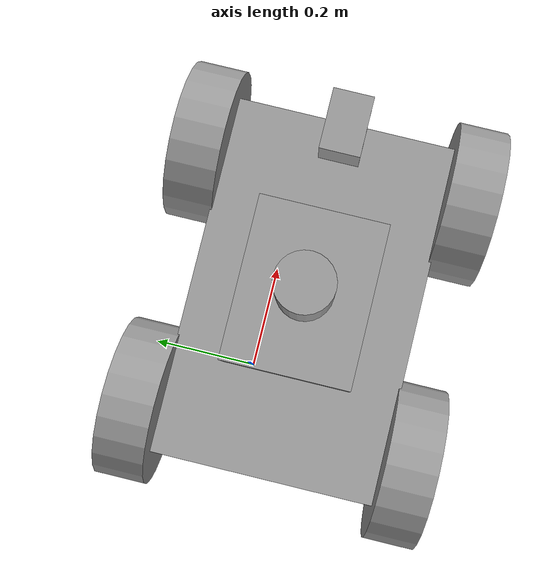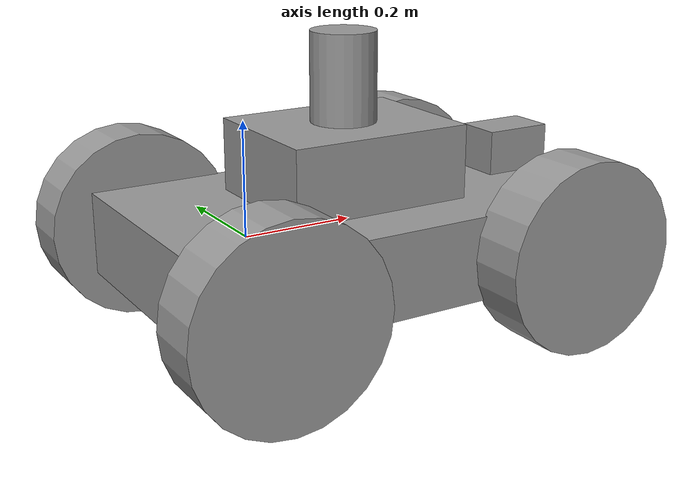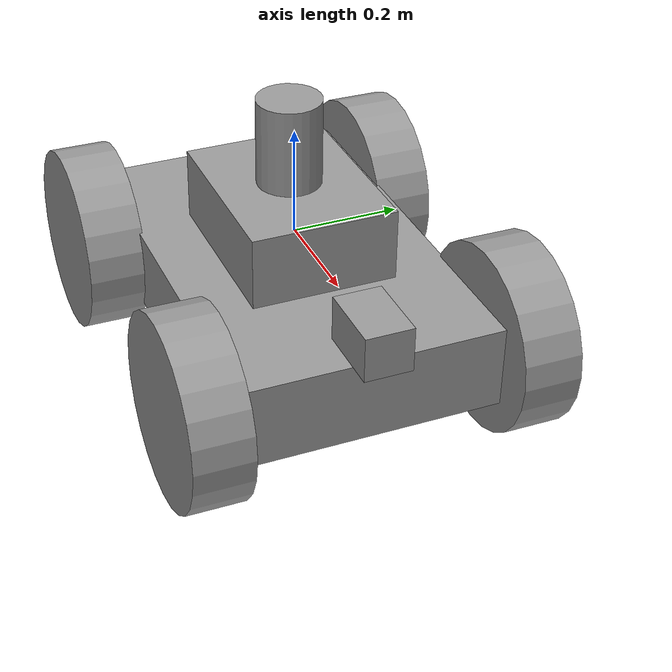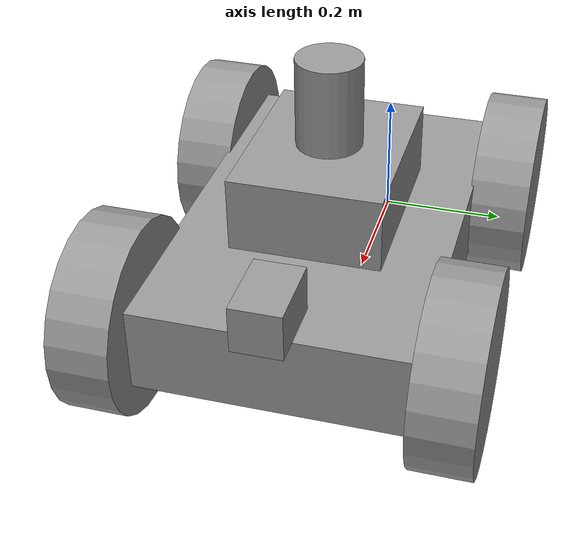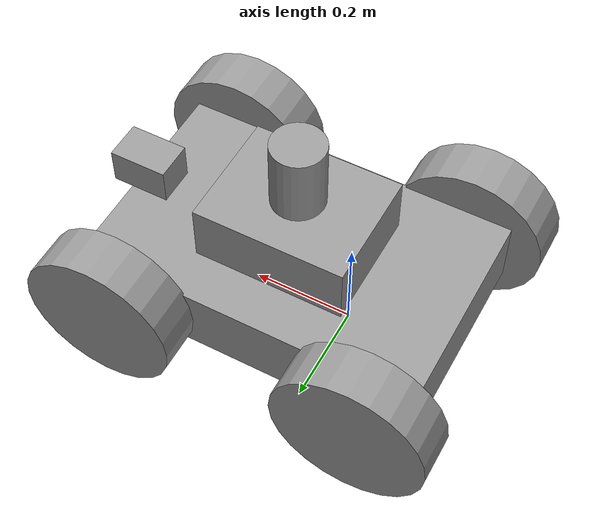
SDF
<?xml version='1.0'?>
<sdf version='1.7'>
  <model name='Untitled'>
    <link name='link_0'>
      <inertial>
        <mass>0.0457204</mass>
        <inertia>
          <ixx>0.000844708</ixx>
          <ixy>0</ixy>
          <ixz>0</ixz>
          <iyy>0.00204553</iyy>
          <iyz>0</iyz>
          <izz>0.0027376</izz>
        </inertia>
        <pose>0 0 0 0 -0 0</pose>
      </inertial>
      <pose>0.149036 -0.069508 0.000198 0 -0 0</pose>
      <visual name='visual'>
        <pose>0 0 0 0 -0 0</pose>
        <geometry>
          <box>
            <size>0.718922 0.449083 0.14153</size>
          </box>
        </geometry>
        <material>
          <lighting>1</lighting>
          <script>
            <uri>file://media/materials/scripts/gazebo.material</uri>
            <name>Gazebo/Grey</name>
          </script>
          <shader type='pixel'/>
          <emissive>0 0 0 1</emissive>
        </material>
        <transparency>0</transparency>
        <cast_shadows>1</cast_shadows>
      </visual>
      <collision name='collision'>
        <laser_retro>0</laser_retro>
        <max_contacts>10</max_contacts>
        <pose>0 0 0 0 -0 0</pose>
        <geometry>
          <box>
            <size>0.718922 0.449083 0.14153</size>
          </box>
        </geometry>
        <surface>
          <friction>
            <ode>
              <mu>1</mu>
              <mu2>1</mu2>
              <fdir1>0 0 0</fdir1>
              <slip1>0</slip1>
              <slip2>0</slip2>
            </ode>
            <torsional>
              <coefficient>1</coefficient>
              <patch_radius>0</patch_radius>
              <surface_radius>0</surface_radius>
              <use_patch_radius>1</use_patch_radius>
              <ode>
                <slip>0</slip>
              </ode>
            </torsional>
          </friction>
          <bounce>
            <restitution_coefficient>0</restitution_coefficient>
            <threshold>1e+06</threshold>
          </bounce>
          <contact>
            <collide_without_contact>0</collide_without_contact>
            <collide_without_contact_bitmask>1</collide_without_contact_bitmask>
            <collide_bitmask>1</collide_bitmask>
            <ode>
              <soft_cfm>0</soft_cfm>
              <soft_erp>0.2</soft_erp>
              <kp>1e+13</kp>
              <kd>1</kd>
              <max_vel>0.01</max_vel>
              <min_depth>0</min_depth>
            </ode>
            <bullet>
              <split_impulse>1</split_impulse>
              <split_impulse_penetration_threshold>-0.01</split_impulse_penetration_threshold>
              <soft_cfm>0</soft_cfm>
              <soft_erp>0.2</soft_erp>
              <kp>1e+13</kp>
              <kd>1</kd>
            </bullet>
          </contact>
        </surface>
      </collision>
    </link>
    <link name='link_1'>
      <inertial>
        <mass>0.0102506</mass>
        <inertia>
          <ixx>7.42392e-05</ixx>
          <ixy>0</ixy>
          <ixz>0</ixz>
          <iyy>7.42392e-05</iyy>
          <iyz>0</iyz>
          <izz>0.000131526</izz>
        </inertia>
        <pose>0 0 0 0 -0 0</pose>
      </inertial>
      <pose>-0.120964 -0.339508 0.000198 1.56446 -0 0</pose>
      <visual name='visual'>
        <pose>0 0 0 0 -0 0</pose>
        <geometry>
          <cylinder>
            <radius>0.160194</radius>
            <length>0.0996144</length>
          </cylinder>
        </geometry>
        <material>
          <lighting>1</lighting>
          <script>
            <uri>file://media/materials/scripts/gazebo.material</uri>
            <name>Gazebo/Grey</name>
          </script>
          <shader type='pixel'/>
          <emissive>0 0 0 1</emissive>
        </material>
        <transparency>0</transparency>
        <cast_shadows>1</cast_shadows>
      </visual>
      <collision name='collision'>
        <laser_retro>0</laser_retro>
        <max_contacts>10</max_contacts>
        <pose>0 0 0 0 -0 0</pose>
        <geometry>
          <cylinder>
            <radius>0.160194</radius>
            <length>0.099614</length>
          </cylinder>
        </geometry>
        <surface>
          <friction>
            <ode>
              <mu>1</mu>
              <mu2>1</mu2>
              <fdir1>0 0 0</fdir1>
              <slip1>0</slip1>
              <slip2>0</slip2>
            </ode>
            <torsional>
              <coefficient>1</coefficient>
              <patch_radius>0</patch_radius>
              <surface_radius>0</surface_radius>
              <use_patch_radius>1</use_patch_radius>
              <ode>
                <slip>0</slip>
              </ode>
            </torsional>
          </friction>
          <bounce>
            <restitution_coefficient>0</restitution_coefficient>
            <threshold>1e+06</threshold>
          </bounce>
          <contact>
            <collide_without_contact>0</collide_without_contact>
            <collide_without_contact_bitmask>1</collide_without_contact_bitmask>
            <collide_bitmask>1</collide_bitmask>
            <ode>
              <soft_cfm>0</soft_cfm>
              <soft_erp>0.2</soft_erp>
              <kp>1e+13</kp>
              <kd>1</kd>
              <max_vel>0.01</max_vel>
              <min_depth>0</min_depth>
            </ode>
            <bullet>
              <split_impulse>1</split_impulse>
              <split_impulse_penetration_threshold>-0.01</split_impulse_penetration_threshold>
              <soft_cfm>0</soft_cfm>
              <soft_erp>0.2</soft_erp>
              <kp>1e+13</kp>
              <kd>1</kd>
            </bullet>
          </contact>
        </surface>
      </collision>
    </link>
    <link name='link_1_clone'>
      <inertial>
        <mass>0.0102506</mass>
        <inertia>
          <ixx>7.42392e-05</ixx>
          <ixy>0</ixy>
          <ixz>0</ixz>
          <iyy>7.42392e-05</iyy>
          <iyz>0</iyz>
          <izz>0.000131526</izz>
        </inertia>
        <pose>0 0 0 0 -0 0</pose>
      </inertial>
      <pose>-0.120964 0.200492 0.000198 1.56446 -0 0</pose>
      <visual name='visual'>
        <pose>0 0 0 0 -0 0</pose>
        <geometry>
          <cylinder>
            <radius>0.160194</radius>
            <length>0.0996144</length>
          </cylinder>
        </geometry>
        <material>
          <lighting>1</lighting>
          <script>
            <uri>file://media/materials/scripts/gazebo.material</uri>
            <name>Gazebo/Grey</name>
          </script>
          <shader type='pixel'/>
          <emissive>0 0 0 1</emissive>
        </material>
        <transparency>0</transparency>
        <cast_shadows>1</cast_shadows>
      </visual>
      <collision name='collision'>
        <laser_retro>0</laser_retro>
        <max_contacts>10</max_contacts>
        <pose>0 0 0 0 -0 0</pose>
        <geometry>
          <cylinder>
            <radius>0.160194</radius>
            <length>0.099614</length>
          </cylinder>
        </geometry>
        <surface>
          <friction>
            <ode>
              <mu>1</mu>
              <mu2>1</mu2>
              <fdir1>0 0 0</fdir1>
              <slip1>0</slip1>
              <slip2>0</slip2>
            </ode>
            <torsional>
              <coefficient>1</coefficient>
              <patch_radius>0</patch_radius>
              <surface_radius>0</surface_radius>
              <use_patch_radius>1</use_patch_radius>
              <ode>
                <slip>0</slip>
              </ode>
            </torsional>
          </friction>
          <bounce>
            <restitution_coefficient>0</restitution_coefficient>
            <threshold>1e+06</threshold>
          </bounce>
          <contact>
            <collide_without_contact>0</collide_without_contact>
            <collide_without_contact_bitmask>1</collide_without_contact_bitmask>
            <collide_bitmask>1</collide_bitmask>
            <ode>
              <soft_cfm>0</soft_cfm>
              <soft_erp>0.2</soft_erp>
              <kp>1e+13</kp>
              <kd>1</kd>
              <max_vel>0.01</max_vel>
              <min_depth>0</min_depth>
            </ode>
            <bullet>
              <split_impulse>1</split_impulse>
              <split_impulse_penetration_threshold>-0.01</split_impulse_penetration_threshold>
              <soft_cfm>0</soft_cfm>
              <soft_erp>0.2</soft_erp>
              <kp>1e+13</kp>
              <kd>1</kd>
            </bullet>
          </contact>
        </surface>
      </collision>
    </link>
    <link name='link_1_clone_0'>
      <inertial>
        <mass>0.0102506</mass>
        <inertia>
          <ixx>7.42392e-05</ixx>
          <ixy>0</ixy>
          <ixz>0</ixz>
          <iyy>7.42392e-05</iyy>
          <iyz>0</iyz>
          <izz>0.000131526</izz>
        </inertia>
        <pose>0 0 0 0 -0 0</pose>
      </inertial>
      <pose>0.419037 0.200492 0.000198 1.56446 -0 0</pose>
      <visual name='visual'>
        <pose>0 0 0 0 -0 0</pose>
        <geometry>
          <cylinder>
            <radius>0.160194</radius>
            <length>0.0996144</length>
          </cylinder>
        </geometry>
        <material>
          <lighting>1</lighting>
          <script>
            <uri>file://media/materials/scripts/gazebo.material</uri>
            <name>Gazebo/Grey</name>
          </script>
          <shader type='pixel'/>
          <emissive>0 0 0 1</emissive>
        </material>
        <transparency>0</transparency>
        <cast_shadows>1</cast_shadows>
      </visual>
      <collision name='collision'>
        <laser_retro>0</laser_retro>
        <max_contacts>10</max_contacts>
        <pose>0 0 0 0 -0 0</pose>
        <geometry>
          <cylinder>
            <radius>0.160194</radius>
            <length>0.099614</length>
          </cylinder>
        </geometry>
        <surface>
          <friction>
            <ode>
              <mu>1</mu>
              <mu2>1</mu2>
              <fdir1>0 0 0</fdir1>
              <slip1>0</slip1>
              <slip2>0</slip2>
            </ode>
            <torsional>
              <coefficient>1</coefficient>
              <patch_radius>0</patch_radius>
              <surface_radius>0</surface_radius>
              <use_patch_radius>1</use_patch_radius>
              <ode>
                <slip>0</slip>
              </ode>
            </torsional>
          </friction>
          <bounce>
            <restitution_coefficient>0</restitution_coefficient>
            <threshold>1e+06</threshold>
          </bounce>
          <contact>
            <collide_without_contact>0</collide_without_contact>
            <collide_without_contact_bitmask>1</collide_without_contact_bitmask>
            <collide_bitmask>1</collide_bitmask>
            <ode>
              <soft_cfm>0</soft_cfm>
              <soft_erp>0.2</soft_erp>
              <kp>1e+13</kp>
              <kd>1</kd>
              <max_vel>0.01</max_vel>
              <min_depth>0</min_depth>
            </ode>
            <bullet>
              <split_impulse>1</split_impulse>
              <split_impulse_penetration_threshold>-0.01</split_impulse_penetration_threshold>
              <soft_cfm>0</soft_cfm>
              <soft_erp>0.2</soft_erp>
              <kp>1e+13</kp>
              <kd>1</kd>
            </bullet>
          </contact>
        </surface>
      </collision>
    </link>
    <link name='link_1_clone_1'>
      <inertial>
        <mass>0.0102506</mass>
        <inertia>
          <ixx>7.42392e-05</ixx>
          <ixy>0</ixy>
          <ixz>0</ixz>
          <iyy>7.42392e-05</iyy>
          <iyz>0</iyz>
          <izz>0.000131526</izz>
        </inertia>
        <pose>0 0 0 0 -0 0</pose>
      </inertial>
      <pose>0.419037 -0.339508 0.000198 1.56446 -0 0</pose>
      <visual name='visual'>
        <pose>0 0 0 0 -0 0</pose>
        <geometry>
          <cylinder>
            <radius>0.160194</radius>
            <length>0.0996144</length>
          </cylinder>
        </geometry>
        <material>
          <lighting>1</lighting>
          <script>
            <uri>file://media/materials/scripts/gazebo.material</uri>
            <name>Gazebo/Grey</name>
          </script>
          <shader type='pixel'/>
          <emissive>0 0 0 1</emissive>
        </material>
        <transparency>0</transparency>
        <cast_shadows>1</cast_shadows>
      </visual>
      <collision name='collision'>
        <laser_retro>0</laser_retro>
        <max_contacts>10</max_contacts>
        <pose>0 0 0 0 -0 0</pose>
        <geometry>
          <cylinder>
            <radius>0.160194</radius>
            <length>0.099614</length>
          </cylinder>
        </geometry>
        <surface>
          <friction>
            <ode>
              <mu>1</mu>
              <mu2>1</mu2>
              <fdir1>0 0 0</fdir1>
              <slip1>0</slip1>
              <slip2>0</slip2>
            </ode>
            <torsional>
              <coefficient>1</coefficient>
              <patch_radius>0</patch_radius>
              <surface_radius>0</surface_radius>
              <use_patch_radius>1</use_patch_radius>
              <ode>
                <slip>0</slip>
              </ode>
            </torsional>
          </friction>
          <bounce>
            <restitution_coefficient>0</restitution_coefficient>
            <threshold>1e+06</threshold>
          </bounce>
          <contact>
            <collide_without_contact>0</collide_without_contact>
            <collide_without_contact_bitmask>1</collide_without_contact_bitmask>
            <collide_bitmask>1</collide_bitmask>
            <ode>
              <soft_cfm>0</soft_cfm>
              <soft_erp>0.2</soft_erp>
              <kp>1e+13</kp>
              <kd>1</kd>
              <max_vel>0.01</max_vel>
              <min_depth>0</min_depth>
            </ode>
            <bullet>
              <split_impulse>1</split_impulse>
              <split_impulse_penetration_threshold>-0.01</split_impulse_penetration_threshold>
              <soft_cfm>0</soft_cfm>
              <soft_erp>0.2</soft_erp>
              <kp>1e+13</kp>
              <kd>1</kd>
            </bullet>
          </contact>
        </surface>
      </collision>
    </link>
    <link name='link_2'>
      <inertial>
        <mass>0.000759026</mass>
        <inertia>
          <ixx>7.92077e-07</ixx>
          <ixy>0</ixy>
          <ixz>0</ixz>
          <iyy>1.30926e-06</iyy>
          <iyz>0</iyz>
          <izz>1.35273e-06</izz>
        </inertia>
        <pose>0 0 0 0 -0 0</pose>
      </inertial>
      <pose>0.489036 -0.069508 0.110198 0 -0 0</pose>
      <visual name='visual'>
        <pose>0 0 0 0 -0 0</pose>
        <geometry>
          <box>
            <size>0.121579 0.081271 0.076926</size>
          </box>
        </geometry>
        <material>
          <lighting>1</lighting>
          <script>
            <uri>file://media/materials/scripts/gazebo.material</uri>
            <name>Gazebo/Grey</name>
          </script>
          <shader type='pixel'/>
          <emissive>0 0 0 1</emissive>
        </material>
        <transparency>0</transparency>
        <cast_shadows>1</cast_shadows>
      </visual>
      <collision name='collision'>
        <laser_retro>0</laser_retro>
        <max_contacts>10</max_contacts>
        <pose>0 0 0 0 -0 0</pose>
        <geometry>
          <box>
            <size>0.121579 0.081271 0.076926</size>
          </box>
        </geometry>
        <surface>
          <friction>
            <ode>
              <mu>1</mu>
              <mu2>1</mu2>
              <fdir1>0 0 0</fdir1>
              <slip1>0</slip1>
              <slip2>0</slip2>
            </ode>
            <torsional>
              <coefficient>1</coefficient>
              <patch_radius>0</patch_radius>
              <surface_radius>0</surface_radius>
              <use_patch_radius>1</use_patch_radius>
              <ode>
                <slip>0</slip>
              </ode>
            </torsional>
          </friction>
          <bounce>
            <restitution_coefficient>0</restitution_coefficient>
            <threshold>1e+06</threshold>
          </bounce>
          <contact>
            <collide_without_contact>0</collide_without_contact>
            <collide_without_contact_bitmask>1</collide_without_contact_bitmask>
            <collide_bitmask>1</collide_bitmask>
            <ode>
              <soft_cfm>0</soft_cfm>
              <soft_erp>0.2</soft_erp>
              <kp>1e+13</kp>
              <kd>1</kd>
              <max_vel>0.01</max_vel>
              <min_depth>0</min_depth>
            </ode>
            <bullet>
              <split_impulse>1</split_impulse>
              <split_impulse_penetration_threshold>-0.01</split_impulse_penetration_threshold>
              <soft_cfm>0</soft_cfm>
              <soft_erp>0.2</soft_erp>
              <kp>1e+13</kp>
              <kd>1</kd>
            </bullet>
          </contact>
        </surface>
      </collision>
    </link>
    <link name='link_3'>
      <inertial>
        <mass>0.0117834</mass>
        <inertia>
          <ixx>8.28877e-05</ixx>
          <ixy>0</ixy>
          <ixz>0</ixz>
          <iyy>0.000120043</iyy>
          <iyz>0</iyz>
          <izz>0.000158754</izz>
        </inertia>
        <pose>0 0 0 0 -0 0</pose>
      </inertial>
      <pose>0.149036 -0.069508 0.120198 0 -0 0</pose>
      <visual name='visual'>
        <pose>0 0 0 0 -0 0</pose>
        <geometry>
          <box>
            <size>0.31584 0.248831 0.149981</size>
          </box>
        </geometry>
        <material>
          <lighting>1</lighting>
          <script>
            <uri>file://media/materials/scripts/gazebo.material</uri>
            <name>Gazebo/Grey</name>
          </script>
          <shader type='pixel'/>
          <emissive>0 0 0 1</emissive>
        </material>
        <transparency>0</transparency>
        <cast_shadows>1</cast_shadows>
      </visual>
      <collision name='collision'>
        <laser_retro>0</laser_retro>
        <max_contacts>10</max_contacts>
        <pose>0 0 0 0 -0 0</pose>
        <geometry>
          <box>
            <size>0.31584 0.248831 0.149981</size>
          </box>
        </geometry>
        <surface>
          <friction>
            <ode>
              <mu>1</mu>
              <mu2>1</mu2>
              <fdir1>0 0 0</fdir1>
              <slip1>0</slip1>
              <slip2>0</slip2>
            </ode>
            <torsional>
              <coefficient>1</coefficient>
              <patch_radius>0</patch_radius>
              <surface_radius>0</surface_radius>
              <use_patch_radius>1</use_patch_radius>
              <ode>
                <slip>0</slip>
              </ode>
            </torsional>
          </friction>
          <bounce>
            <restitution_coefficient>0</restitution_coefficient>
            <threshold>1e+06</threshold>
          </bounce>
          <contact>
            <collide_without_contact>0</collide_without_contact>
            <collide_without_contact_bitmask>1</collide_without_contact_bitmask>
            <collide_bitmask>1</collide_bitmask>
            <ode>
              <soft_cfm>0</soft_cfm>
              <soft_erp>0.2</soft_erp>
              <kp>1e+13</kp>
              <kd>1</kd>
              <max_vel>0.01</max_vel>
              <min_depth>0</min_depth>
            </ode>
            <bullet>
              <split_impulse>1</split_impulse>
              <split_impulse_penetration_threshold>-0.01</split_impulse_penetration_threshold>
              <soft_cfm>0</soft_cfm>
              <soft_erp>0.2</soft_erp>
              <kp>1e+13</kp>
              <kd>1</kd>
            </bullet>
          </contact>
        </surface>
      </collision>
    </link>
    <link name='link_4'>
      <inertial>
        <mass>0.0018121</mass>
        <inertia>
          <ixx>4.75108e-06</ixx>
          <ixy>0</ixy>
          <ixz>0</ixz>
          <iyy>4.75108e-06</iyy>
          <iyz>0</iyz>
          <izz>2.74685e-06</izz>
        </inertia>
        <pose>0 0 0 0 -0 0</pose>
      </inertial>
      <pose>0.149036 -0.069508 0.270198 0 -0 0</pose>
      <visual name='visual'>
        <pose>0 0 0 0 -0 0</pose>
        <geometry>
          <cylinder>
            <radius>0.0550607</radius>
            <length>0.149557</length>
          </cylinder>
        </geometry>
        <material>
          <lighting>1</lighting>
          <script>
            <uri>file://media/materials/scripts/gazebo.material</uri>
            <name>Gazebo/Grey</name>
          </script>
          <shader type='pixel'/>
          <emissive>0 0 0 1</emissive>
        </material>
        <transparency>0</transparency>
        <cast_shadows>1</cast_shadows>
      </visual>
      <collision name='collision'>
        <laser_retro>0</laser_retro>
        <max_contacts>10</max_contacts>
        <pose>0 0 0 0 -0 0</pose>
        <geometry>
          <cylinder>
            <radius>0.055061</radius>
            <length>0.149557</length>
          </cylinder>
        </geometry>
        <surface>
          <friction>
            <ode>
              <mu>1</mu>
              <mu2>1</mu2>
              <fdir1>0 0 0</fdir1>
              <slip1>0</slip1>
              <slip2>0</slip2>
            </ode>
            <torsional>
              <coefficient>1</coefficient>
              <patch_radius>0</patch_radius>
              <surface_radius>0</surface_radius>
              <use_patch_radius>1</use_patch_radius>
              <ode>
                <slip>0</slip>
              </ode>
            </torsional>
          </friction>
          <bounce>
            <restitution_coefficient>0</restitution_coefficient>
            <threshold>1e+06</threshold>
          </bounce>
          <contact>
            <collide_without_contact>0</collide_without_contact>
            <collide_without_contact_bitmask>1</collide_without_contact_bitmask>
            <collide_bitmask>1</collide_bitmask>
            <ode>
              <soft_cfm>0</soft_cfm>
              <soft_erp>0.2</soft_erp>
              <kp>1e+13</kp>
              <kd>1</kd>
              <max_vel>0.01</max_vel>
              <min_depth>0</min_depth>
            </ode>
            <bullet>
              <split_impulse>1</split_impulse>
              <split_impulse_penetration_threshold>-0.01</split_impulse_penetration_threshold>
              <soft_cfm>0</soft_cfm>
              <soft_erp>0.2</soft_erp>
              <kp>1e+13</kp>
              <kd>1</kd>
            </bullet>
          </contact>
        </surface>
      </collision>
    </link>
    <joint name='link_0_JOINT_0' type='revolute'>
      <parent>link_0</parent>
      <child>link_1</child>
      <pose>0 0 0 0 -0 0</pose>
      <axis>
        <xyz>0 0 1</xyz>
        <limit>
          <lower>-1.79769e+308</lower>
          <upper>1.79769e+308</upper>
          <effort>-1</effort>
          <velocity>-1</velocity>
        </limit>
        <dynamics>
          <spring_reference>0</spring_reference>
          <spring_stiffness>0</spring_stiffness>
          <damping>0</damping>
          <friction>0</friction>
        </dynamics>
      </axis>
      <physics>
        <ode>
          <limit>
            <cfm>0</cfm>
            <erp>0.2</erp>
          </limit>
          <suspension>
            <cfm>0</cfm>
            <erp>0.2</erp>
          </suspension>
        </ode>
      </physics>
    </joint>
    <joint name='link_0_JOINT_1' type='revolute'>
      <parent>link_0</parent>
      <child>link_1_clone</child>
      <pose>0 0 0 0 -0 0</pose>
      <axis>
        <xyz>0 0 1</xyz>
        <limit>
          <lower>-1.79769e+308</lower>
          <upper>1.79769e+308</upper>
          <effort>-1</effort>
          <velocity>-1</velocity>
        </limit>
        <dynamics>
          <spring_reference>0</spring_reference>
          <spring_stiffness>0</spring_stiffness>
          <damping>0</damping>
          <friction>0</friction>
        </dynamics>
      </axis>
      <physics>
        <ode>
          <limit>
            <cfm>0</cfm>
            <erp>0.2</erp>
          </limit>
          <suspension>
            <cfm>0</cfm>
            <erp>0.2</erp>
          </suspension>
        </ode>
      </physics>
    </joint>
    <joint name='link_0_JOINT_2' type='revolute'>
      <parent>link_0</parent>
      <child>link_1_clone_1</child>
      <pose>0 0 0 0 -0 0</pose>
      <axis>
        <xyz>0 0 1</xyz>
        <limit>
          <lower>-1.79769e+308</lower>
          <upper>1.79769e+308</upper>
          <effort>-1</effort>
          <velocity>-1</velocity>
        </limit>
        <dynamics>
          <spring_reference>0</spring_reference>
          <spring_stiffness>0</spring_stiffness>
          <damping>0</damping>
        </dynamics>
      </axis>
      <physics>
        <ode>
          <limit>
            <cfm>0</cfm>
            <erp>0.2</erp>
          </limit>
          <suspension>
            <cfm>0</cfm>
            <erp>0.2</erp>
          </suspension>
        </ode>
      </physics>
    </joint>
    <joint name='link_0_JOINT_3' type='revolute'>
      <parent>link_0</parent>
      <child>link_1_clone_0</child>
      <pose>0 0 0 0 -0 0</pose>
      <axis>
        <xyz>0 0 1</xyz>
        <limit>
          <lower>-1.79769e+308</lower>
          <upper>1.79769e+308</upper>
          <effort>-1</effort>
          <velocity>-1</velocity>
        </limit>
        <dynamics>
          <spring_reference>0</spring_reference>
          <spring_stiffness>0</spring_stiffness>
          <damping>0</damping>
        </dynamics>
      </axis>
      <physics>
        <ode>
          <limit>
            <cfm>0</cfm>
            <erp>0.2</erp>
          </limit>
          <suspension>
            <cfm>0</cfm>
            <erp>0.2</erp>
          </suspension>
        </ode>
      </physics>
    </joint>
    <joint name='link_0_JOINT_5' type='fixed'>
      <parent>link_0</parent>
      <child>link_2</child>
      <pose>0 0 0 0 -0 0</pose>
      <physics>
        <ode>
          <limit>
            <cfm>0</cfm>
            <erp>0.2</erp>
          </limit>
          <suspension>
            <cfm>0</cfm>
            <erp>0.2</erp>
          </suspension>
        </ode>
      </physics>
    </joint>
    <joint name='link_0_JOINT_6' type='fixed'>
      <parent>link_0</parent>
      <child>link_3</child>
      <pose>0 0 0 0 -0 0</pose>
      <physics>
        <ode>
          <limit>
            <cfm>0</cfm>
            <erp>0.2</erp>
          </limit>
          <suspension>
            <cfm>0</cfm>
            <erp>0.2</erp>
          </suspension>
        </ode>
      </physics>
    </joint>
    <joint name='link_3_JOINT_7' type='fixed'>
      <parent>link_3</parent>
      <child>link_4</child>
      <pose>0 0 0 0 -0 0</pose>
      <physics>
        <ode>
          <limit>
            <cfm>0</cfm>
            <erp>0.2</erp>
          </limit>
          <suspension>
            <cfm>0</cfm>
            <erp>0.2</erp>
          </suspension>
        </ode>
      </physics>
    </joint>
    <static>0</static>
    <allow_auto_disable>1</allow_auto_disable>
  </model>
</sdf>
